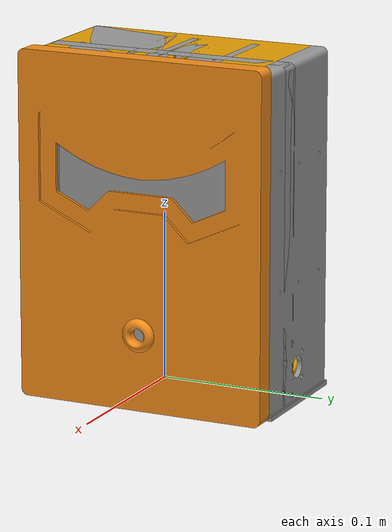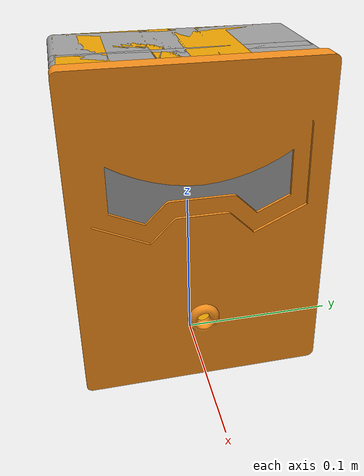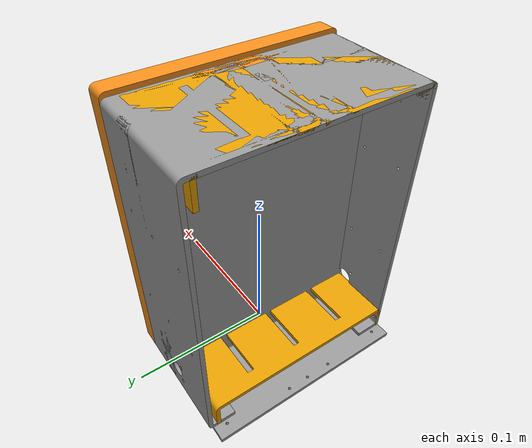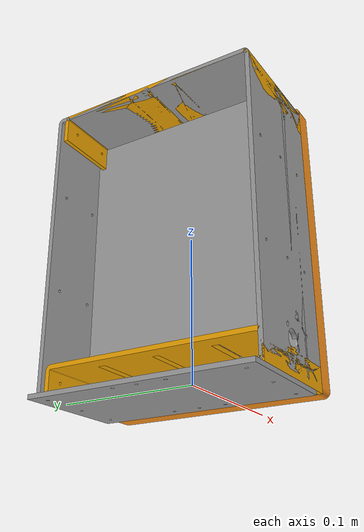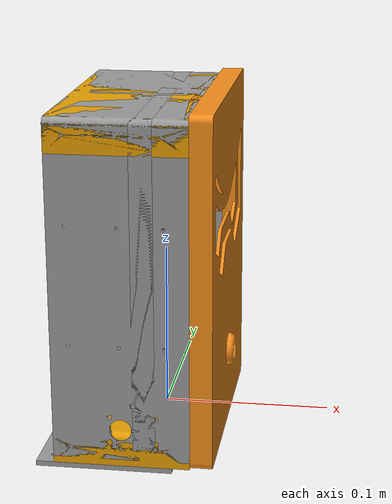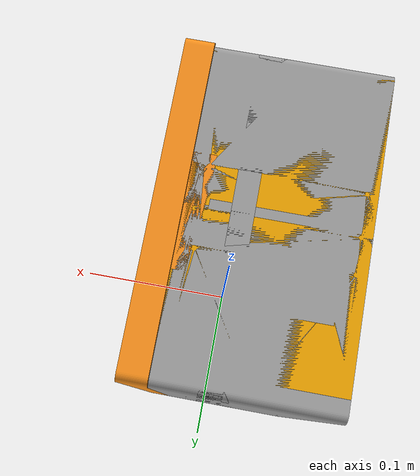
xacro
<?xml version="1.0"?>
<robot xmlns:xacro="http://www.ros.org/wiki/xacro">
  <xacro:include filename="common.xacro"/>
  <!-- =========================
       BASE LINK (clean rigid chassis)
       ========================= -->
  <link name="base_link">
    <!-- MAIN FRAME -->
    <visual>
      <origin xyz="0.025 -0.075 -0.01" rpy="0 0 1.5708"/>
      <geometry>
        <mesh filename="package://robot_description/meshes/main_frame.stl"
              scale="0.001 0.001 0.001"/>
      </geometry>
      <material name="frame_grey"/>
    </visual>
    <!-- SIDE PANEL -->
    <visual>
      <origin xyz="0.025 -0.075 -0.01" rpy="0 0 1.5708"/>
      <geometry>
        <mesh filename="package://robot_description/meshes/side_panel.stl"
              scale="0.001 0.001 0.001"/>
      </geometry>
      <material name="frame_grey"/>
    </visual>
    <!-- BOTTOM SHELF (at axle height) -->
    <visual>
      <origin xyz="0.025 -0.075 -0.01" rpy="0 0 1.5708"/>
      <geometry>
        <mesh filename="package://robot_description/meshes/shelf_panel_b.stl"
              scale="0.001 0.001 0.001"/>
      </geometry>
      <material name="panel_dark"/>
    </visual>
    <!-- TOP SHELF -->
    <visual>
      <origin xyz="0.025 -0.075 0.174" rpy="0 0 1.5708"/>
      <geometry>
        <mesh filename="package://robot_description/meshes/shelf_panel_a.stl"
              scale="0.001 0.001 0.001"/>
      </geometry>
      <material name="panel_dark"/>
    </visual>
    <!-- BASE PLATE (underside) -->
    <visual>
      <origin xyz="0.025 -0.075 -0.013" rpy="0 0 1.5708"/>
      <geometry>
        <mesh filename="package://robot_description/meshes/base_plate.stl"
              scale="0.001 0.001 0.001"/>
      </geometry>
      <material name="frame_grey"/>
    </visual>
    <!-- BRACKET (face piece, relative to frame center) -->
    <visual>
      <origin xyz="0.015 -0.075 -0.01" rpy="1.5707963 0 1.5707963"/>
      <geometry>
        <mesh filename="package://robot_description/meshes/bracket_arm.stl"
              scale="0.001 0.001 0.001"/>
      </geometry>
      <material name="bracket_orange"/>
    </visual>
    <!-- COLLISION -->
    <collision>
      <origin xyz="0.025 -0.075 ${frame_z / 2.0 - 0.01}" rpy="0 0 0"/>
      <geometry>
        <box size="${frame_x} ${frame_y} ${frame_z}"/>
      </geometry>
    </collision>
    <!-- INERTIAL -->
    <inertial>
      <origin xyz="0.025 -0.075 ${frame_z / 2.0 - 0.01}" rpy="0 0 0"/>
      <mass value="${frame_mass}"/>
      <xacro:box_inertia mass="${frame_mass}"
                          x="${frame_x}"
                          y="${frame_y}"
                          z="${frame_z}"/>
    </inertial>
  </link>
</robot>
